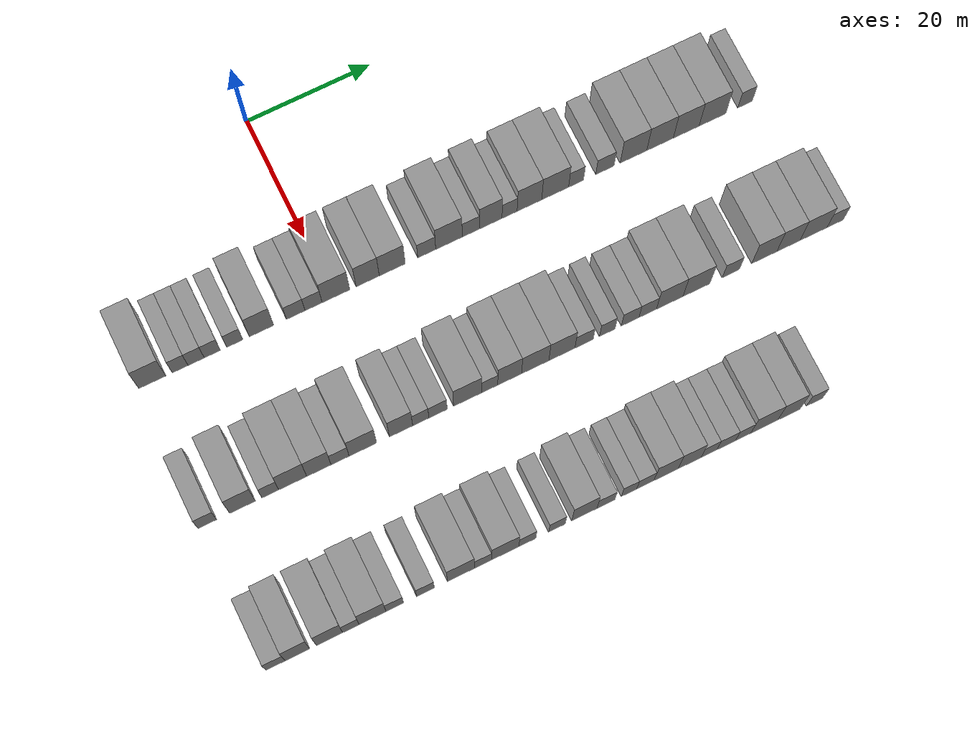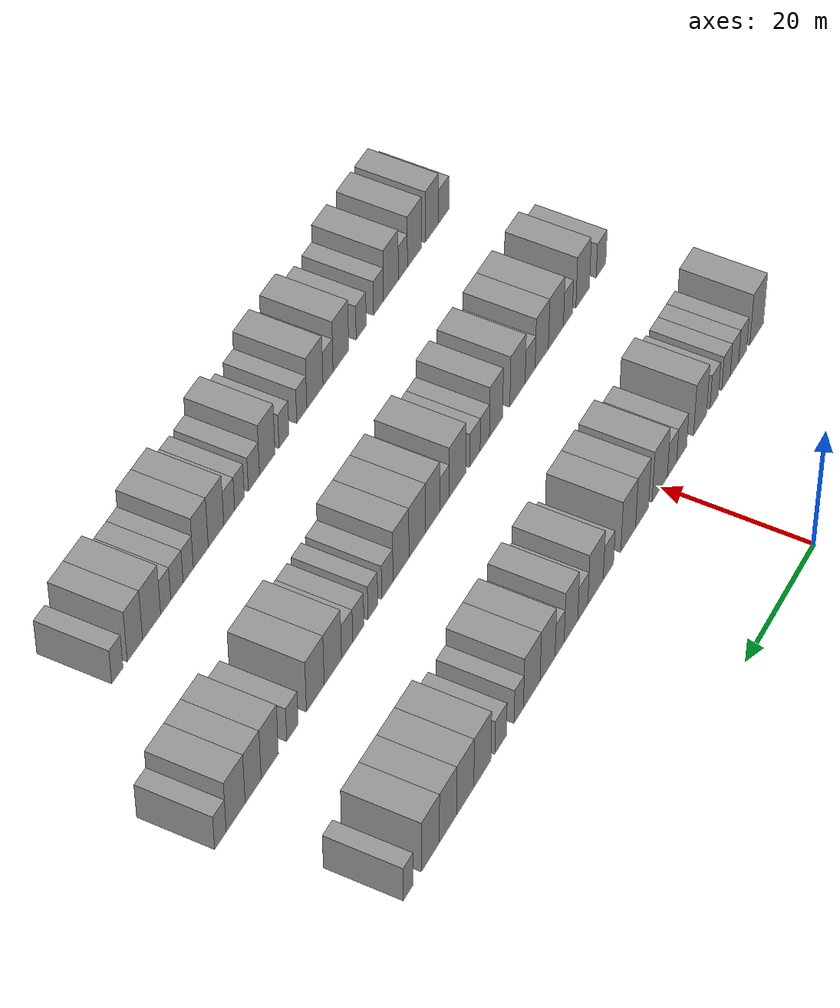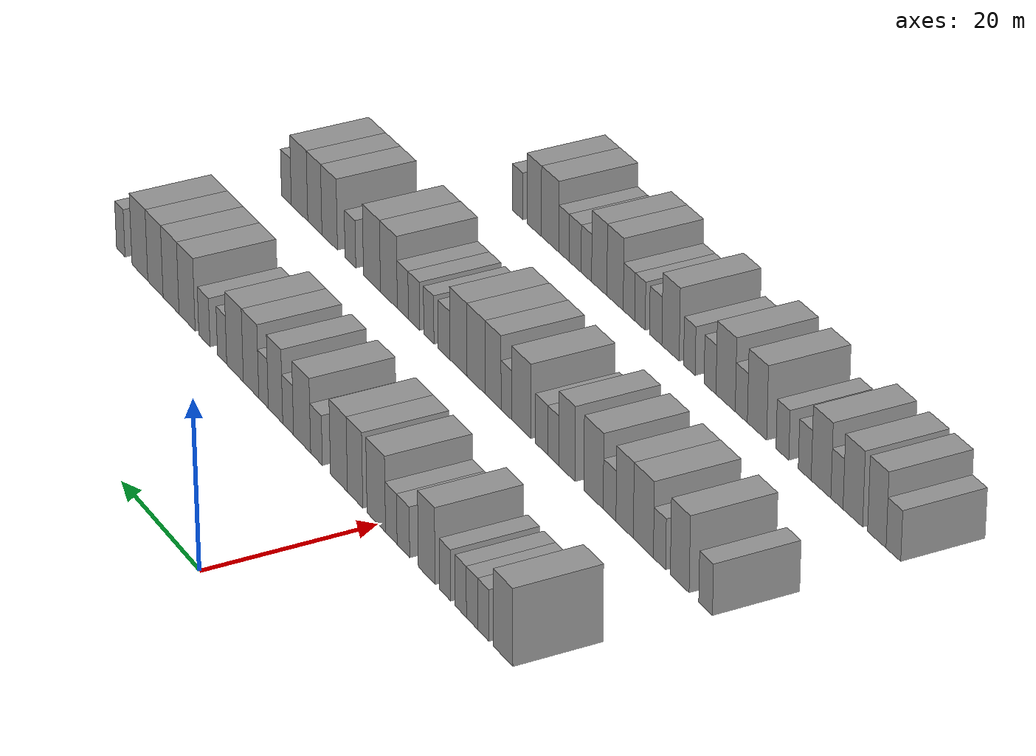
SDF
<sdf version="1.6">
 <world name="default">
  <model name="building_88">
   <static>1</static>
   <pose>25.0000 -28.3885 0 0.000000 0.000000 0.000000</pose>
   <link name="link">
    <pose>0 0 4.50 0 0 0</pose>
    <collision name="collision"><geometry><box><size>10.0000 4.1904 9.0000</size></box></geometry></collision>
    <visual name="visual">
     <cast_shadows>0</cast_shadows>
     <geometry><box><size>10.0000 4.1904 9.0000</size></box></geometry>
     <material>
      <script>
       <uri>model://grey_wall/materials/scripts</uri>
       <uri>model://grey_wall/materials/textures</uri>
       <name>vrc/grey_wall</name>
      </script>
     </material>
    </visual>
   </link>
  </model>
  <model name="building_89">
   <static>1</static>
   <pose>25.0000 -24.0654 0 0.000000 0.000000 0.000000</pose>
   <link name="link">
    <pose>0 0 3.00 0 0 0</pose>
    <collision name="collision"><geometry><box><size>10.0000 2.4556 6.0000</size></box></geometry></collision>
    <visual name="visual">
     <cast_shadows>0</cast_shadows>
     <geometry><box><size>10.0000 2.4556 6.0000</size></box></geometry>
     <material>
      <script>
       <uri>model://grey_wall/materials/scripts</uri>
       <uri>model://grey_wall/materials/textures</uri>
       <name>vrc/grey_wall</name>
      </script>
     </material>
    </visual>
   </link>
  </model>
  <model name="building_90">
   <static>1</static>
   <pose>25.0000 -21.5696 0 0.000000 0.000000 0.000000</pose>
   <link name="link">
    <pose>0 0 3.00 0 0 0</pose>
    <collision name="collision"><geometry><box><size>10.0000 2.5361 6.0000</size></box></geometry></collision>
    <visual name="visual">
     <cast_shadows>0</cast_shadows>
     <geometry><box><size>10.0000 2.5361 6.0000</size></box></geometry>
     <material>
      <script>
       <uri>model://grey_wall/materials/scripts</uri>
       <uri>model://grey_wall/materials/textures</uri>
       <name>vrc/grey_wall</name>
      </script>
     </material>
    </visual>
   </link>
  </model>
  <model name="building_91">
   <static>1</static>
   <pose>25.0000 -19.0458 0 0.000000 0.000000 0.000000</pose>
   <link name="link">
    <pose>0 0 3.00 0 0 0</pose>
    <collision name="collision"><geometry><box><size>10.0000 2.5114 6.0000</size></box></geometry></collision>
    <visual name="visual">
     <cast_shadows>0</cast_shadows>
     <geometry><box><size>10.0000 2.5114 6.0000</size></box></geometry>
     <material>
      <script>
       <uri>model://grey_wall/materials/scripts</uri>
       <uri>model://grey_wall/materials/textures</uri>
       <name>vrc/grey_wall</name>
      </script>
     </material>
    </visual>
   </link>
  </model>
  <model name="building_92">
   <static>1</static>
   <pose>25.0000 -15.5203 0 0.000000 0.000000 0.000000</pose>
   <link name="link">
    <pose>0 0 3.00 0 0 0</pose>
    <collision name="collision"><geometry><box><size>10.0000 2.5397 6.0000</size></box></geometry></collision>
    <visual name="visual">
     <cast_shadows>0</cast_shadows>
     <geometry><box><size>10.0000 2.5397 6.0000</size></box></geometry>
     <material>
      <script>
       <uri>model://grey_wall/materials/scripts</uri>
       <uri>model://grey_wall/materials/textures</uri>
       <name>vrc/grey_wall</name>
      </script>
     </material>
    </visual>
   </link>
  </model>
  <model name="building_93">
   <static>1</static>
   <pose>25.0000 -11.3293 0 0.000000 0.000000 0.000000</pose>
   <link name="link">
    <pose>0 0 4.50 0 0 0</pose>
    <collision name="collision"><geometry><box><size>10.0000 3.8422 9.0000</size></box></geometry></collision>
    <visual name="visual">
     <cast_shadows>0</cast_shadows>
     <geometry><box><size>10.0000 3.8422 9.0000</size></box></geometry>
     <material>
      <script>
       <uri>model://grey_wall/materials/scripts</uri>
       <uri>model://grey_wall/materials/textures</uri>
       <name>vrc/grey_wall</name>
      </script>
     </material>
    </visual>
   </link>
  </model>
  <model name="building_94">
   <static>1</static>
   <pose>25.0000 -5.9409 0 0.000000 0.000000 0.000000</pose>
   <link name="link">
    <pose>0 0 3.00 0 0 0</pose>
    <collision name="collision"><geometry><box><size>10.0000 2.9345 6.0000</size></box></geometry></collision>
    <visual name="visual">
     <cast_shadows>0</cast_shadows>
     <geometry><box><size>10.0000 2.9345 6.0000</size></box></geometry>
     <material>
      <script>
       <uri>model://grey_wall/materials/scripts</uri>
       <uri>model://grey_wall/materials/textures</uri>
       <name>vrc/grey_wall</name>
      </script>
     </material>
    </visual>
   </link>
  </model>
  <model name="building_95">
   <static>1</static>
   <pose>25.0000 -3.1197 0 0.000000 0.000000 0.000000</pose>
   <link name="link">
    <pose>0 0 3.00 0 0 0</pose>
    <collision name="collision"><geometry><box><size>10.0000 2.7080 6.0000</size></box></geometry></collision>
    <visual name="visual">
     <cast_shadows>0</cast_shadows>
     <geometry><box><size>10.0000 2.7080 6.0000</size></box></geometry>
     <material>
      <script>
       <uri>model://grey_wall/materials/scripts</uri>
       <uri>model://grey_wall/materials/textures</uri>
       <name>vrc/grey_wall</name>
      </script>
     </material>
    </visual>
   </link>
  </model>
  <model name="building_96">
   <static>1</static>
   <pose>25.0000 0.4315 0 0.000000 0.000000 0.000000</pose>
   <link name="link">
    <pose>0 0 4.50 0 0 0</pose>
    <collision name="collision"><geometry><box><size>10.0000 4.3944 9.0000</size></box></geometry></collision>
    <visual name="visual">
     <cast_shadows>0</cast_shadows>
     <geometry><box><size>10.0000 4.3944 9.0000</size></box></geometry>
     <material>
      <script>
       <uri>model://grey_wall/materials/scripts</uri>
       <uri>model://grey_wall/materials/textures</uri>
       <name>vrc/grey_wall</name>
      </script>
     </material>
    </visual>
   </link>
  </model>
  <model name="building_97">
   <static>1</static>
   <pose>25.0000 5.4753 0 0.000000 0.000000 0.000000</pose>
   <link name="link">
    <pose>0 0 4.50 0 0 0</pose>
    <collision name="collision"><geometry><box><size>10.0000 3.6933 9.0000</size></box></geometry></collision>
    <visual name="visual">
     <cast_shadows>0</cast_shadows>
     <geometry><box><size>10.0000 3.6933 9.0000</size></box></geometry>
     <material>
      <script>
       <uri>model://grey_wall/materials/scripts</uri>
       <uri>model://grey_wall/materials/textures</uri>
       <name>vrc/grey_wall</name>
      </script>
     </material>
    </visual>
   </link>
  </model>
  <model name="building_98">
   <static>1</static>
   <pose>25.0000 9.3908 0 0.000000 0.000000 0.000000</pose>
   <link name="link">
    <pose>0 0 4.50 0 0 0</pose>
    <collision name="collision"><geometry><box><size>10.0000 4.1376 9.0000</size></box></geometry></collision>
    <visual name="visual">
     <cast_shadows>0</cast_shadows>
     <geometry><box><size>10.0000 4.1376 9.0000</size></box></geometry>
     <material>
      <script>
       <uri>model://grey_wall/materials/scripts</uri>
       <uri>model://grey_wall/materials/textures</uri>
       <name>vrc/grey_wall</name>
      </script>
     </material>
    </visual>
   </link>
  </model>
  <model name="building_99">
   <static>1</static>
   <pose>25.0000 14.9051 0 0.000000 0.000000 0.000000</pose>
   <link name="link">
    <pose>0 0 3.00 0 0 0</pose>
    <collision name="collision"><geometry><box><size>10.0000 2.8911 6.0000</size></box></geometry></collision>
    <visual name="visual">
     <cast_shadows>0</cast_shadows>
     <geometry><box><size>10.0000 2.8911 6.0000</size></box></geometry>
     <material>
      <script>
       <uri>model://grey_wall/materials/scripts</uri>
       <uri>model://grey_wall/materials/textures</uri>
       <name>vrc/grey_wall</name>
      </script>
     </material>
    </visual>
   </link>
  </model>
  <model name="building_100">
   <static>1</static>
   <pose>25.0000 18.4840 0 0.000000 0.000000 0.000000</pose>
   <link name="link">
    <pose>0 0 4.50 0 0 0</pose>
    <collision name="collision"><geometry><box><size>10.0000 4.2667 9.0000</size></box></geometry></collision>
    <visual name="visual">
     <cast_shadows>0</cast_shadows>
     <geometry><box><size>10.0000 4.2667 9.0000</size></box></geometry>
     <material>
      <script>
       <uri>model://grey_wall/materials/scripts</uri>
       <uri>model://grey_wall/materials/textures</uri>
       <name>vrc/grey_wall</name>
      </script>
     </material>
    </visual>
   </link>
  </model>
  <model name="building_101">
   <static>1</static>
   <pose>25.0000 21.9863 0 0.000000 0.000000 0.000000</pose>
   <link name="link">
    <pose>0 0 3.00 0 0 0</pose>
    <collision name="collision"><geometry><box><size>10.0000 2.7380 6.0000</size></box></geometry></collision>
    <visual name="visual">
     <cast_shadows>0</cast_shadows>
     <geometry><box><size>10.0000 2.7380 6.0000</size></box></geometry>
     <material>
      <script>
       <uri>model://grey_wall/materials/scripts</uri>
       <uri>model://grey_wall/materials/textures</uri>
       <name>vrc/grey_wall</name>
      </script>
     </material>
    </visual>
   </link>
  </model>
  <model name="building_102">
   <static>1</static>
   <pose>25.0000 25.1922 0 0.000000 0.000000 0.000000</pose>
   <link name="link">
    <pose>0 0 4.50 0 0 0</pose>
    <collision name="collision"><geometry><box><size>10.0000 3.6737 9.0000</size></box></geometry></collision>
    <visual name="visual">
     <cast_shadows>0</cast_shadows>
     <geometry><box><size>10.0000 3.6737 9.0000</size></box></geometry>
     <material>
      <script>
       <uri>model://grey_wall/materials/scripts</uri>
       <uri>model://grey_wall/materials/textures</uri>
       <name>vrc/grey_wall</name>
      </script>
     </material>
    </visual>
   </link>
  </model>
  <model name="building_103">
   <static>1</static>
   <pose>25.0000 28.2496 0 0.000000 0.000000 0.000000</pose>
   <link name="link">
    <pose>0 0 3.00 0 0 0</pose>
    <collision name="collision"><geometry><box><size>10.0000 2.4411 6.0000</size></box></geometry></collision>
    <visual name="visual">
     <cast_shadows>0</cast_shadows>
     <geometry><box><size>10.0000 2.4411 6.0000</size></box></geometry>
     <material>
      <script>
       <uri>model://grey_wall/materials/scripts</uri>
       <uri>model://grey_wall/materials/textures</uri>
       <name>vrc/grey_wall</name>
      </script>
     </material>
    </visual>
   </link>
  </model>
  <model name="building_104">
   <static>1</static>
   <pose>25.0000 31.4704 0 0.000000 0.000000 0.000000</pose>
   <link name="link">
    <pose>0 0 4.50 0 0 0</pose>
    <collision name="collision"><geometry><box><size>10.0000 4.0004 9.0000</size></box></geometry></collision>
    <visual name="visual">
     <cast_shadows>0</cast_shadows>
     <geometry><box><size>10.0000 4.0004 9.0000</size></box></geometry>
     <material>
      <script>
       <uri>model://grey_wall/materials/scripts</uri>
       <uri>model://grey_wall/materials/textures</uri>
       <name>vrc/grey_wall</name>
      </script>
     </material>
    </visual>
   </link>
  </model>
  <model name="building_105">
   <static>1</static>
   <pose>25.0000 35.6618 0 0.000000 0.000000 0.000000</pose>
   <link name="link">
    <pose>0 0 4.50 0 0 0</pose>
    <collision name="collision"><geometry><box><size>10.0000 4.3824 9.0000</size></box></geometry></collision>
    <visual name="visual">
     <cast_shadows>0</cast_shadows>
     <geometry><box><size>10.0000 4.3824 9.0000</size></box></geometry>
     <material>
      <script>
       <uri>model://grey_wall/materials/scripts</uri>
       <uri>model://grey_wall/materials/textures</uri>
       <name>vrc/grey_wall</name>
      </script>
     </material>
    </visual>
   </link>
  </model>
  <model name="building_106">
   <static>1</static>
   <pose>25.0000 39.0703 0 0.000000 0.000000 0.000000</pose>
   <link name="link">
    <pose>0 0 3.00 0 0 0</pose>
    <collision name="collision"><geometry><box><size>10.0000 2.4347 6.0000</size></box></geometry></collision>
    <visual name="visual">
     <cast_shadows>0</cast_shadows>
     <geometry><box><size>10.0000 2.4347 6.0000</size></box></geometry>
     <material>
      <script>
       <uri>model://grey_wall/materials/scripts</uri>
       <uri>model://grey_wall/materials/textures</uri>
       <name>vrc/grey_wall</name>
      </script>
     </material>
    </visual>
   </link>
  </model>
  <model name="building_107">
   <static>1</static>
   <pose>25.0000 43.7862 0 0.000000 0.000000 0.000000</pose>
   <link name="link">
    <pose>0 0 3.00 0 0 0</pose>
    <collision name="collision"><geometry><box><size>10.0000 2.9971 6.0000</size></box></geometry></collision>
    <visual name="visual">
     <cast_shadows>0</cast_shadows>
     <geometry><box><size>10.0000 2.9971 6.0000</size></box></geometry>
     <material>
      <script>
       <uri>model://grey_wall/materials/scripts</uri>
       <uri>model://grey_wall/materials/textures</uri>
       <name>vrc/grey_wall</name>
      </script>
     </material>
    </visual>
   </link>
  </model>
  <model name="building_108">
   <static>1</static>
   <pose>25.0000 48.4741 0 0.000000 0.000000 0.000000</pose>
   <link name="link">
    <pose>0 0 4.50 0 0 0</pose>
    <collision name="collision"><geometry><box><size>10.0000 4.3787 9.0000</size></box></geometry></collision>
    <visual name="visual">
     <cast_shadows>0</cast_shadows>
     <geometry><box><size>10.0000 4.3787 9.0000</size></box></geometry>
     <material>
      <script>
       <uri>model://grey_wall/materials/scripts</uri>
       <uri>model://grey_wall/materials/textures</uri>
       <name>vrc/grey_wall</name>
      </script>
     </material>
    </visual>
   </link>
  </model>
  <model name="building_109">
   <static>1</static>
   <pose>25.0000 52.8541 0 0.000000 0.000000 0.000000</pose>
   <link name="link">
    <pose>0 0 4.50 0 0 0</pose>
    <collision name="collision"><geometry><box><size>10.0000 4.3813 9.0000</size></box></geometry></collision>
    <visual name="visual">
     <cast_shadows>0</cast_shadows>
     <geometry><box><size>10.0000 4.3813 9.0000</size></box></geometry>
     <material>
      <script>
       <uri>model://grey_wall/materials/scripts</uri>
       <uri>model://grey_wall/materials/textures</uri>
       <name>vrc/grey_wall</name>
      </script>
     </material>
    </visual>
   </link>
  </model>
  <model name="building_110">
   <static>1</static>
   <pose>25.0000 57.1756 0 0.000000 0.000000 0.000000</pose>
   <link name="link">
    <pose>0 0 4.50 0 0 0</pose>
    <collision name="collision"><geometry><box><size>10.0000 4.2616 9.0000</size></box></geometry></collision>
    <visual name="visual">
     <cast_shadows>0</cast_shadows>
     <geometry><box><size>10.0000 4.2616 9.0000</size></box></geometry>
     <material>
      <script>
       <uri>model://grey_wall/materials/scripts</uri>
       <uri>model://grey_wall/materials/textures</uri>
       <name>vrc/grey_wall</name>
      </script>
     </material>
    </visual>
   </link>
  </model>
  <model name="building_111">
   <static>1</static>
   <pose>25.0000 61.5272 0 0.000000 0.000000 0.000000</pose>
   <link name="link">
    <pose>0 0 4.50 0 0 0</pose>
    <collision name="collision"><geometry><box><size>10.0000 4.4417 9.0000</size></box></geometry></collision>
    <visual name="visual">
     <cast_shadows>0</cast_shadows>
     <geometry><box><size>10.0000 4.4417 9.0000</size></box></geometry>
     <material>
      <script>
       <uri>model://grey_wall/materials/scripts</uri>
       <uri>model://grey_wall/materials/textures</uri>
       <name>vrc/grey_wall</name>
      </script>
     </material>
    </visual>
   </link>
  </model>
  <model name="building_112">
   <static>1</static>
   <pose>25.0000 66.9552 0 0.000000 0.000000 0.000000</pose>
   <link name="link">
    <pose>0 0 3.00 0 0 0</pose>
    <collision name="collision"><geometry><box><size>10.0000 2.4143 6.0000</size></box></geometry></collision>
    <visual name="visual">
     <cast_shadows>0</cast_shadows>
     <geometry><box><size>10.0000 2.4143 6.0000</size></box></geometry>
     <material>
      <script>
       <uri>model://grey_wall/materials/scripts</uri>
       <uri>model://grey_wall/materials/textures</uri>
       <name>vrc/grey_wall</name>
      </script>
     </material>
    </visual>
   </link>
  </model>
  <model name="building_275">
   <static>1</static>
   <pose>47.0000 -29.7096 0 0.000000 0.000000 0.000000</pose>
   <link name="link">
    <pose>0 0 3.00 0 0 0</pose>
    <collision name="collision"><geometry><box><size>10.0000 2.8460 6.0000</size></box></geometry></collision>
    <visual name="visual">
     <cast_shadows>0</cast_shadows>
     <geometry><box><size>10.0000 2.8460 6.0000</size></box></geometry>
     <material>
      <script>
       <uri>model://grey_wall/materials/scripts</uri>
       <uri>model://grey_wall/materials/textures</uri>
       <name>vrc/grey_wall</name>
      </script>
     </material>
    </visual>
   </link>
  </model>
  <model name="building_276">
   <static>1</static>
   <pose>47.0000 -24.3093 0 0.000000 0.000000 0.000000</pose>
   <link name="link">
    <pose>0 0 4.50 0 0 0</pose>
    <collision name="collision"><geometry><box><size>10.0000 3.9545 9.0000</size></box></geometry></collision>
    <visual name="visual">
     <cast_shadows>0</cast_shadows>
     <geometry><box><size>10.0000 3.9545 9.0000</size></box></geometry>
     <material>
      <script>
       <uri>model://grey_wall/materials/scripts</uri>
       <uri>model://grey_wall/materials/textures</uri>
       <name>vrc/grey_wall</name>
      </script>
     </material>
    </visual>
   </link>
  </model>
  <model name="building_277">
   <static>1</static>
   <pose>47.0000 -20.0316 0 0.000000 0.000000 0.000000</pose>
   <link name="link">
    <pose>0 0 3.00 0 0 0</pose>
    <collision name="collision"><geometry><box><size>10.0000 2.6008 6.0000</size></box></geometry></collision>
    <visual name="visual">
     <cast_shadows>0</cast_shadows>
     <geometry><box><size>10.0000 2.6008 6.0000</size></box></geometry>
     <material>
      <script>
       <uri>model://grey_wall/materials/scripts</uri>
       <uri>model://grey_wall/materials/textures</uri>
       <name>vrc/grey_wall</name>
      </script>
     </material>
    </visual>
   </link>
  </model>
  <model name="building_278">
   <static>1</static>
   <pose>47.0000 -16.5733 0 0.000000 0.000000 0.000000</pose>
   <link name="link">
    <pose>0 0 4.50 0 0 0</pose>
    <collision name="collision"><geometry><box><size>10.0000 4.3157 9.0000</size></box></geometry></collision>
    <visual name="visual">
     <cast_shadows>0</cast_shadows>
     <geometry><box><size>10.0000 4.3157 9.0000</size></box></geometry>
     <material>
      <script>
       <uri>model://grey_wall/materials/scripts</uri>
       <uri>model://grey_wall/materials/textures</uri>
       <name>vrc/grey_wall</name>
      </script>
     </material>
    </visual>
   </link>
  </model>
  <model name="building_279">
   <static>1</static>
   <pose>47.0000 -12.5269 0 0.000000 0.000000 0.000000</pose>
   <link name="link">
    <pose>0 0 4.50 0 0 0</pose>
    <collision name="collision"><geometry><box><size>10.0000 3.7772 9.0000</size></box></geometry></collision>
    <visual name="visual">
     <cast_shadows>0</cast_shadows>
     <geometry><box><size>10.0000 3.7772 9.0000</size></box></geometry>
     <material>
      <script>
       <uri>model://grey_wall/materials/scripts</uri>
       <uri>model://grey_wall/materials/textures</uri>
       <name>vrc/grey_wall</name>
      </script>
     </material>
    </visual>
   </link>
  </model>
  <model name="building_280">
   <static>1</static>
   <pose>47.0000 -9.2367 0 0.000000 0.000000 0.000000</pose>
   <link name="link">
    <pose>0 0 3.00 0 0 0</pose>
    <collision name="collision"><geometry><box><size>10.0000 2.8031 6.0000</size></box></geometry></collision>
    <visual name="visual">
     <cast_shadows>0</cast_shadows>
     <geometry><box><size>10.0000 2.8031 6.0000</size></box></geometry>
     <material>
      <script>
       <uri>model://grey_wall/materials/scripts</uri>
       <uri>model://grey_wall/materials/textures</uri>
       <name>vrc/grey_wall</name>
      </script>
     </material>
    </visual>
   </link>
  </model>
  <model name="building_281">
   <static>1</static>
   <pose>47.0000 -5.6960 0 0.000000 0.000000 0.000000</pose>
   <link name="link">
    <pose>0 0 4.50 0 0 0</pose>
    <collision name="collision"><geometry><box><size>10.0000 4.2783 9.0000</size></box></geometry></collision>
    <visual name="visual">
     <cast_shadows>0</cast_shadows>
     <geometry><box><size>10.0000 4.2783 9.0000</size></box></geometry>
     <material>
      <script>
       <uri>model://grey_wall/materials/scripts</uri>
       <uri>model://grey_wall/materials/textures</uri>
       <name>vrc/grey_wall</name>
      </script>
     </material>
    </visual>
   </link>
  </model>
  <model name="building_282">
   <static>1</static>
   <pose>47.0000 0.2681 0 0.000000 0.000000 0.000000</pose>
   <link name="link">
    <pose>0 0 4.50 0 0 0</pose>
    <collision name="collision"><geometry><box><size>10.0000 3.6499 9.0000</size></box></geometry></collision>
    <visual name="visual">
     <cast_shadows>0</cast_shadows>
     <geometry><box><size>10.0000 3.6499 9.0000</size></box></geometry>
     <material>
      <script>
       <uri>model://grey_wall/materials/scripts</uri>
       <uri>model://grey_wall/materials/textures</uri>
       <name>vrc/grey_wall</name>
      </script>
     </material>
    </visual>
   </link>
  </model>
  <model name="building_283">
   <static>1</static>
   <pose>47.0000 3.3596 0 0.000000 0.000000 0.000000</pose>
   <link name="link">
    <pose>0 0 3.00 0 0 0</pose>
    <collision name="collision"><geometry><box><size>10.0000 2.5332 6.0000</size></box></geometry></collision>
    <visual name="visual">
     <cast_shadows>0</cast_shadows>
     <geometry><box><size>10.0000 2.5332 6.0000</size></box></geometry>
     <material>
      <script>
       <uri>model://grey_wall/materials/scripts</uri>
       <uri>model://grey_wall/materials/textures</uri>
       <name>vrc/grey_wall</name>
      </script>
     </material>
    </visual>
   </link>
  </model>
  <model name="building_284">
   <static>1</static>
   <pose>47.0000 6.0678 0 0.000000 0.000000 0.000000</pose>
   <link name="link">
    <pose>0 0 3.00 0 0 0</pose>
    <collision name="collision"><geometry><box><size>10.0000 2.8831 6.0000</size></box></geometry></collision>
    <visual name="visual">
     <cast_shadows>0</cast_shadows>
     <geometry><box><size>10.0000 2.8831 6.0000</size></box></geometry>
     <material>
      <script>
       <uri>model://grey_wall/materials/scripts</uri>
       <uri>model://grey_wall/materials/textures</uri>
       <name>vrc/grey_wall</name>
      </script>
     </material>
    </visual>
   </link>
  </model>
  <model name="building_285">
   <static>1</static>
   <pose>47.0000 10.7539 0 0.000000 0.000000 0.000000</pose>
   <link name="link">
    <pose>0 0 4.50 0 0 0</pose>
    <collision name="collision"><geometry><box><size>10.0000 4.4890 9.0000</size></box></geometry></collision>
    <visual name="visual">
     <cast_shadows>0</cast_shadows>
     <geometry><box><size>10.0000 4.4890 9.0000</size></box></geometry>
     <material>
      <script>
       <uri>model://grey_wall/materials/scripts</uri>
       <uri>model://grey_wall/materials/textures</uri>
       <name>vrc/grey_wall</name>
      </script>
     </material>
    </visual>
   </link>
  </model>
  <model name="building_286">
   <static>1</static>
   <pose>47.0000 14.2380 0 0.000000 0.000000 0.000000</pose>
   <link name="link">
    <pose>0 0 3.00 0 0 0</pose>
    <collision name="collision"><geometry><box><size>10.0000 2.4792 6.0000</size></box></geometry></collision>
    <visual name="visual">
     <cast_shadows>0</cast_shadows>
     <geometry><box><size>10.0000 2.4792 6.0000</size></box></geometry>
     <material>
      <script>
       <uri>model://grey_wall/materials/scripts</uri>
       <uri>model://grey_wall/materials/textures</uri>
       <name>vrc/grey_wall</name>
      </script>
     </material>
    </visual>
   </link>
  </model>
  <model name="building_287">
   <static>1</static>
   <pose>47.0000 17.3684 0 0.000000 0.000000 0.000000</pose>
   <link name="link">
    <pose>0 0 4.50 0 0 0</pose>
    <collision name="collision"><geometry><box><size>10.0000 3.7816 9.0000</size></box></geometry></collision>
    <visual name="visual">
     <cast_shadows>0</cast_shadows>
     <geometry><box><size>10.0000 3.7816 9.0000</size></box></geometry>
     <material>
      <script>
       <uri>model://grey_wall/materials/scripts</uri>
       <uri>model://grey_wall/materials/textures</uri>
       <name>vrc/grey_wall</name>
      </script>
     </material>
    </visual>
   </link>
  </model>
  <model name="building_288">
   <static>1</static>
   <pose>47.0000 21.4338 0 0.000000 0.000000 0.000000</pose>
   <link name="link">
    <pose>0 0 4.50 0 0 0</pose>
    <collision name="collision"><geometry><box><size>10.0000 4.3492 9.0000</size></box></geometry></collision>
    <visual name="visual">
     <cast_shadows>0</cast_shadows>
     <geometry><box><size>10.0000 4.3492 9.0000</size></box></geometry>
     <material>
      <script>
       <uri>model://grey_wall/materials/scripts</uri>
       <uri>model://grey_wall/materials/textures</uri>
       <name>vrc/grey_wall</name>
      </script>
     </material>
    </visual>
   </link>
  </model>
  <model name="building_289">
   <static>1</static>
   <pose>47.0000 25.6853 0 0.000000 0.000000 0.000000</pose>
   <link name="link">
    <pose>0 0 4.50 0 0 0</pose>
    <collision name="collision"><geometry><box><size>10.0000 4.1538 9.0000</size></box></geometry></collision>
    <visual name="visual">
     <cast_shadows>0</cast_shadows>
     <geometry><box><size>10.0000 4.1538 9.0000</size></box></geometry>
     <material>
      <script>
       <uri>model://grey_wall/materials/scripts</uri>
       <uri>model://grey_wall/materials/textures</uri>
       <name>vrc/grey_wall</name>
      </script>
     </material>
    </visual>
   </link>
  </model>
  <model name="building_290">
   <static>1</static>
   <pose>47.0000 29.2273 0 0.000000 0.000000 0.000000</pose>
   <link name="link">
    <pose>0 0 3.00 0 0 0</pose>
    <collision name="collision"><geometry><box><size>10.0000 2.9302 6.0000</size></box></geometry></collision>
    <visual name="visual">
     <cast_shadows>0</cast_shadows>
     <geometry><box><size>10.0000 2.9302 6.0000</size></box></geometry>
     <material>
      <script>
       <uri>model://grey_wall/materials/scripts</uri>
       <uri>model://grey_wall/materials/textures</uri>
       <name>vrc/grey_wall</name>
      </script>
     </material>
    </visual>
   </link>
  </model>
  <model name="building_291">
   <static>1</static>
   <pose>47.0000 32.9473 0 0.000000 0.000000 0.000000</pose>
   <link name="link">
    <pose>0 0 3.00 0 0 0</pose>
    <collision name="collision"><geometry><box><size>10.0000 2.5098 6.0000</size></box></geometry></collision>
    <visual name="visual">
     <cast_shadows>0</cast_shadows>
     <geometry><box><size>10.0000 2.5098 6.0000</size></box></geometry>
     <material>
      <script>
       <uri>model://grey_wall/materials/scripts</uri>
       <uri>model://grey_wall/materials/textures</uri>
       <name>vrc/grey_wall</name>
      </script>
     </material>
    </visual>
   </link>
  </model>
  <model name="building_292">
   <static>1</static>
   <pose>47.0000 36.6264 0 0.000000 0.000000 0.000000</pose>
   <link name="link">
    <pose>0 0 3.00 0 0 0</pose>
    <collision name="collision"><geometry><box><size>10.0000 2.8484 6.0000</size></box></geometry></collision>
    <visual name="visual">
     <cast_shadows>0</cast_shadows>
     <geometry><box><size>10.0000 2.8484 6.0000</size></box></geometry>
     <material>
      <script>
       <uri>model://grey_wall/materials/scripts</uri>
       <uri>model://grey_wall/materials/textures</uri>
       <name>vrc/grey_wall</name>
      </script>
     </material>
    </visual>
   </link>
  </model>
  <model name="building_293">
   <static>1</static>
   <pose>47.0000 39.4523 0 0.000000 0.000000 0.000000</pose>
   <link name="link">
    <pose>0 0 3.00 0 0 0</pose>
    <collision name="collision"><geometry><box><size>10.0000 2.8034 6.0000</size></box></geometry></collision>
    <visual name="visual">
     <cast_shadows>0</cast_shadows>
     <geometry><box><size>10.0000 2.8034 6.0000</size></box></geometry>
     <material>
      <script>
       <uri>model://grey_wall/materials/scripts</uri>
       <uri>model://grey_wall/materials/textures</uri>
       <name>vrc/grey_wall</name>
      </script>
     </material>
    </visual>
   </link>
  </model>
  <model name="building_294">
   <static>1</static>
   <pose>47.0000 43.0053 0 0.000000 0.000000 0.000000</pose>
   <link name="link">
    <pose>0 0 4.50 0 0 0</pose>
    <collision name="collision"><geometry><box><size>10.0000 4.3025 9.0000</size></box></geometry></collision>
    <visual name="visual">
     <cast_shadows>0</cast_shadows>
     <geometry><box><size>10.0000 4.3025 9.0000</size></box></geometry>
     <material>
      <script>
       <uri>model://grey_wall/materials/scripts</uri>
       <uri>model://grey_wall/materials/textures</uri>
       <name>vrc/grey_wall</name>
      </script>
     </material>
    </visual>
   </link>
  </model>
  <model name="building_295">
   <static>1</static>
   <pose>47.0000 47.3461 0 0.000000 0.000000 0.000000</pose>
   <link name="link">
    <pose>0 0 4.50 0 0 0</pose>
    <collision name="collision"><geometry><box><size>10.0000 4.3790 9.0000</size></box></geometry></collision>
    <visual name="visual">
     <cast_shadows>0</cast_shadows>
     <geometry><box><size>10.0000 4.3790 9.0000</size></box></geometry>
     <material>
      <script>
       <uri>model://grey_wall/materials/scripts</uri>
       <uri>model://grey_wall/materials/textures</uri>
       <name>vrc/grey_wall</name>
      </script>
     </material>
    </visual>
   </link>
  </model>
  <model name="building_296">
   <static>1</static>
   <pose>47.0000 52.9402 0 0.000000 0.000000 0.000000</pose>
   <link name="link">
    <pose>0 0 3.00 0 0 0</pose>
    <collision name="collision"><geometry><box><size>10.0000 2.8092 6.0000</size></box></geometry></collision>
    <visual name="visual">
     <cast_shadows>0</cast_shadows>
     <geometry><box><size>10.0000 2.8092 6.0000</size></box></geometry>
     <material>
      <script>
       <uri>model://grey_wall/materials/scripts</uri>
       <uri>model://grey_wall/materials/textures</uri>
       <name>vrc/grey_wall</name>
      </script>
     </material>
    </visual>
   </link>
  </model>
  <model name="building_297">
   <static>1</static>
   <pose>47.0000 58.4036 0 0.000000 0.000000 0.000000</pose>
   <link name="link">
    <pose>0 0 4.50 0 0 0</pose>
    <collision name="collision"><geometry><box><size>10.0000 4.1176 9.0000</size></box></geometry></collision>
    <visual name="visual">
     <cast_shadows>0</cast_shadows>
     <geometry><box><size>10.0000 4.1176 9.0000</size></box></geometry>
     <material>
      <script>
       <uri>model://grey_wall/materials/scripts</uri>
       <uri>model://grey_wall/materials/textures</uri>
       <name>vrc/grey_wall</name>
      </script>
     </material>
    </visual>
   </link>
  </model>
  <model name="building_298">
   <static>1</static>
   <pose>47.0000 62.3664 0 0.000000 0.000000 0.000000</pose>
   <link name="link">
    <pose>0 0 4.50 0 0 0</pose>
    <collision name="collision"><geometry><box><size>10.0000 3.8080 9.0000</size></box></geometry></collision>
    <visual name="visual">
     <cast_shadows>0</cast_shadows>
     <geometry><box><size>10.0000 3.8080 9.0000</size></box></geometry>
     <material>
      <script>
       <uri>model://grey_wall/materials/scripts</uri>
       <uri>model://grey_wall/materials/textures</uri>
       <name>vrc/grey_wall</name>
      </script>
     </material>
    </visual>
   </link>
  </model>
  <model name="building_299">
   <static>1</static>
   <pose>47.0000 66.4973 0 0.000000 0.000000 0.000000</pose>
   <link name="link">
    <pose>0 0 4.50 0 0 0</pose>
    <collision name="collision"><geometry><box><size>10.0000 4.4540 9.0000</size></box></geometry></collision>
    <visual name="visual">
     <cast_shadows>0</cast_shadows>
     <geometry><box><size>10.0000 4.4540 9.0000</size></box></geometry>
     <material>
      <script>
       <uri>model://grey_wall/materials/scripts</uri>
       <uri>model://grey_wall/materials/textures</uri>
       <name>vrc/grey_wall</name>
      </script>
     </material>
    </visual>
   </link>
  </model>
  <model name="building_300">
   <static>1</static>
   <pose>47.0000 70.0728 0 0.000000 0.000000 0.000000</pose>
   <link name="link">
    <pose>0 0 3.00 0 0 0</pose>
    <collision name="collision"><geometry><box><size>10.0000 2.6970 6.0000</size></box></geometry></collision>
    <visual name="visual">
     <cast_shadows>0</cast_shadows>
     <geometry><box><size>10.0000 2.6970 6.0000</size></box></geometry>
     <material>
      <script>
       <uri>model://grey_wall/materials/scripts</uri>
       <uri>model://grey_wall/materials/textures</uri>
       <name>vrc/grey_wall</name>
      </script>
     </material>
    </visual>
   </link>
  </model>
  <model name="building_467">
   <static>1</static>
   <pose>69.0000 -29.3229 0 0.000000 0.000000 0.000000</pose>
   <link name="link">
    <pose>0 0 3.00 0 0 0</pose>
    <collision name="collision"><geometry><box><size>10.0000 2.9201 6.0000</size></box></geometry></collision>
    <visual name="visual">
     <cast_shadows>0</cast_shadows>
     <geometry><box><size>10.0000 2.9201 6.0000</size></box></geometry>
     <material>
      <script>
       <uri>model://grey_wall/materials/scripts</uri>
       <uri>model://grey_wall/materials/textures</uri>
       <name>vrc/grey_wall</name>
      </script>
     </material>
    </visual>
   </link>
  </model>
  <model name="building_468">
   <static>1</static>
   <pose>69.0000 -26.0053 0 0.000000 0.000000 0.000000</pose>
   <link name="link">
    <pose>0 0 4.50 0 0 0</pose>
    <collision name="collision"><geometry><box><size>10.0000 3.7152 9.0000</size></box></geometry></collision>
    <visual name="visual">
     <cast_shadows>0</cast_shadows>
     <geometry><box><size>10.0000 3.7152 9.0000</size></box></geometry>
     <material>
      <script>
       <uri>model://grey_wall/materials/scripts</uri>
       <uri>model://grey_wall/materials/textures</uri>
       <name>vrc/grey_wall</name>
      </script>
     </material>
    </visual>
   </link>
  </model>
  <model name="building_469">
   <static>1</static>
   <pose>69.0000 -21.1502 0 0.000000 0.000000 0.000000</pose>
   <link name="link">
    <pose>0 0 4.50 0 0 0</pose>
    <collision name="collision"><geometry><box><size>10.0000 3.9950 9.0000</size></box></geometry></collision>
    <visual name="visual">
     <cast_shadows>0</cast_shadows>
     <geometry><box><size>10.0000 3.9950 9.0000</size></box></geometry>
     <material>
      <script>
       <uri>model://grey_wall/materials/scripts</uri>
       <uri>model://grey_wall/materials/textures</uri>
       <name>vrc/grey_wall</name>
      </script>
     </material>
    </visual>
   </link>
  </model>
  <model name="building_470">
   <static>1</static>
   <pose>69.0000 -17.8982 0 0.000000 0.000000 0.000000</pose>
   <link name="link">
    <pose>0 0 3.00 0 0 0</pose>
    <collision name="collision"><geometry><box><size>10.0000 2.5090 6.0000</size></box></geometry></collision>
    <visual name="visual">
     <cast_shadows>0</cast_shadows>
     <geometry><box><size>10.0000 2.5090 6.0000</size></box></geometry>
     <material>
      <script>
       <uri>model://grey_wall/materials/scripts</uri>
       <uri>model://grey_wall/materials/textures</uri>
       <name>vrc/grey_wall</name>
      </script>
     </material>
    </visual>
   </link>
  </model>
  <model name="building_471">
   <static>1</static>
   <pose>69.0000 -14.6063 0 0.000000 0.000000 0.000000</pose>
   <link name="link">
    <pose>0 0 4.50 0 0 0</pose>
    <collision name="collision"><geometry><box><size>10.0000 4.0749 9.0000</size></box></geometry></collision>
    <visual name="visual">
     <cast_shadows>0</cast_shadows>
     <geometry><box><size>10.0000 4.0749 9.0000</size></box></geometry>
     <material>
      <script>
       <uri>model://grey_wall/materials/scripts</uri>
       <uri>model://grey_wall/materials/textures</uri>
       <name>vrc/grey_wall</name>
      </script>
     </material>
    </visual>
   </link>
  </model>
  <model name="building_472">
   <static>1</static>
   <pose>69.0000 -11.2140 0 0.000000 0.000000 0.000000</pose>
   <link name="link">
    <pose>0 0 3.00 0 0 0</pose>
    <collision name="collision"><geometry><box><size>10.0000 2.7097 6.0000</size></box></geometry></collision>
    <visual name="visual">
     <cast_shadows>0</cast_shadows>
     <geometry><box><size>10.0000 2.7097 6.0000</size></box></geometry>
     <material>
      <script>
       <uri>model://grey_wall/materials/scripts</uri>
       <uri>model://grey_wall/materials/textures</uri>
       <name>vrc/grey_wall</name>
      </script>
     </material>
    </visual>
   </link>
  </model>
  <model name="building_473">
   <static>1</static>
   <pose>69.0000 -6.4988 0 0.000000 0.000000 0.000000</pose>
   <link name="link">
    <pose>0 0 3.00 0 0 0</pose>
    <collision name="collision"><geometry><box><size>10.0000 2.7207 6.0000</size></box></geometry></collision>
    <visual name="visual">
     <cast_shadows>0</cast_shadows>
     <geometry><box><size>10.0000 2.7207 6.0000</size></box></geometry>
     <material>
      <script>
       <uri>model://grey_wall/materials/scripts</uri>
       <uri>model://grey_wall/materials/textures</uri>
       <name>vrc/grey_wall</name>
      </script>
     </material>
    </visual>
   </link>
  </model>
  <model name="building_474">
   <static>1</static>
   <pose>69.0000 -1.0537 0 0.000000 0.000000 0.000000</pose>
   <link name="link">
    <pose>0 0 4.50 0 0 0</pose>
    <collision name="collision"><geometry><box><size>10.0000 4.1696 9.0000</size></box></geometry></collision>
    <visual name="visual">
     <cast_shadows>0</cast_shadows>
     <geometry><box><size>10.0000 4.1696 9.0000</size></box></geometry>
     <material>
      <script>
       <uri>model://grey_wall/materials/scripts</uri>
       <uri>model://grey_wall/materials/textures</uri>
       <name>vrc/grey_wall</name>
      </script>
     </material>
    </visual>
   </link>
  </model>
  <model name="building_475">
   <static>1</static>
   <pose>69.0000 2.3524 0 0.000000 0.000000 0.000000</pose>
   <link name="link">
    <pose>0 0 3.00 0 0 0</pose>
    <collision name="collision"><geometry><box><size>10.0000 2.6427 6.0000</size></box></geometry></collision>
    <visual name="visual">
     <cast_shadows>0</cast_shadows>
     <geometry><box><size>10.0000 2.6427 6.0000</size></box></geometry>
     <material>
      <script>
       <uri>model://grey_wall/materials/scripts</uri>
       <uri>model://grey_wall/materials/textures</uri>
       <name>vrc/grey_wall</name>
      </script>
     </material>
    </visual>
   </link>
  </model>
  <model name="building_476">
   <static>1</static>
   <pose>69.0000 5.7955 0 0.000000 0.000000 0.000000</pose>
   <link name="link">
    <pose>0 0 4.50 0 0 0</pose>
    <collision name="collision"><geometry><box><size>10.0000 4.2434 9.0000</size></box></geometry></collision>
    <visual name="visual">
     <cast_shadows>0</cast_shadows>
     <geometry><box><size>10.0000 4.2434 9.0000</size></box></geometry>
     <material>
      <script>
       <uri>model://grey_wall/materials/scripts</uri>
       <uri>model://grey_wall/materials/textures</uri>
       <name>vrc/grey_wall</name>
      </script>
     </material>
    </visual>
   </link>
  </model>
  <model name="building_477">
   <static>1</static>
   <pose>69.0000 9.2351 0 0.000000 0.000000 0.000000</pose>
   <link name="link">
    <pose>0 0 3.00 0 0 0</pose>
    <collision name="collision"><geometry><box><size>10.0000 2.6357 6.0000</size></box></geometry></collision>
    <visual name="visual">
     <cast_shadows>0</cast_shadows>
     <geometry><box><size>10.0000 2.6357 6.0000</size></box></geometry>
     <material>
      <script>
       <uri>model://grey_wall/materials/scripts</uri>
       <uri>model://grey_wall/materials/textures</uri>
       <name>vrc/grey_wall</name>
      </script>
     </material>
    </visual>
   </link>
  </model>
  <model name="building_478">
   <static>1</static>
   <pose>69.0000 13.8510 0 0.000000 0.000000 0.000000</pose>
   <link name="link">
    <pose>0 0 3.00 0 0 0</pose>
    <collision name="collision"><geometry><box><size>10.0000 2.5962 6.0000</size></box></geometry></collision>
    <visual name="visual">
     <cast_shadows>0</cast_shadows>
     <geometry><box><size>10.0000 2.5962 6.0000</size></box></geometry>
     <material>
      <script>
       <uri>model://grey_wall/materials/scripts</uri>
       <uri>model://grey_wall/materials/textures</uri>
       <name>vrc/grey_wall</name>
      </script>
     </material>
    </visual>
   </link>
  </model>
  <model name="building_479">
   <static>1</static>
   <pose>69.0000 18.1203 0 0.000000 0.000000 0.000000</pose>
   <link name="link">
    <pose>0 0 4.50 0 0 0</pose>
    <collision name="collision"><geometry><box><size>10.0000 3.9423 9.0000</size></box></geometry></collision>
    <visual name="visual">
     <cast_shadows>0</cast_shadows>
     <geometry><box><size>10.0000 3.9423 9.0000</size></box></geometry>
     <material>
      <script>
       <uri>model://grey_wall/materials/scripts</uri>
       <uri>model://grey_wall/materials/textures</uri>
       <name>vrc/grey_wall</name>
      </script>
     </material>
    </visual>
   </link>
  </model>
  <model name="building_480">
   <static>1</static>
   <pose>69.0000 21.5104 0 0.000000 0.000000 0.000000</pose>
   <link name="link">
    <pose>0 0 3.00 0 0 0</pose>
    <collision name="collision"><geometry><box><size>10.0000 2.8379 6.0000</size></box></geometry></collision>
    <visual name="visual">
     <cast_shadows>0</cast_shadows>
     <geometry><box><size>10.0000 2.8379 6.0000</size></box></geometry>
     <material>
      <script>
       <uri>model://grey_wall/materials/scripts</uri>
       <uri>model://grey_wall/materials/textures</uri>
       <name>vrc/grey_wall</name>
      </script>
     </material>
    </visual>
   </link>
  </model>
  <model name="building_481">
   <static>1</static>
   <pose>69.0000 25.1404 0 0.000000 0.000000 0.000000</pose>
   <link name="link">
    <pose>0 0 3.00 0 0 0</pose>
    <collision name="collision"><geometry><box><size>10.0000 2.4220 6.0000</size></box></geometry></collision>
    <visual name="visual">
     <cast_shadows>0</cast_shadows>
     <geometry><box><size>10.0000 2.4220 6.0000</size></box></geometry>
     <material>
      <script>
       <uri>model://grey_wall/materials/scripts</uri>
       <uri>model://grey_wall/materials/textures</uri>
       <name>vrc/grey_wall</name>
      </script>
     </material>
    </visual>
   </link>
  </model>
  <model name="building_482">
   <static>1</static>
   <pose>69.0000 27.7045 0 0.000000 0.000000 0.000000</pose>
   <link name="link">
    <pose>0 0 3.00 0 0 0</pose>
    <collision name="collision"><geometry><box><size>10.0000 2.7062 6.0000</size></box></geometry></collision>
    <visual name="visual">
     <cast_shadows>0</cast_shadows>
     <geometry><box><size>10.0000 2.7062 6.0000</size></box></geometry>
     <material>
      <script>
       <uri>model://grey_wall/materials/scripts</uri>
       <uri>model://grey_wall/materials/textures</uri>
       <name>vrc/grey_wall</name>
      </script>
     </material>
    </visual>
   </link>
  </model>
  <model name="building_483">
   <static>1</static>
   <pose>69.0000 30.9823 0 0.000000 0.000000 0.000000</pose>
   <link name="link">
    <pose>0 0 4.50 0 0 0</pose>
    <collision name="collision"><geometry><box><size>10.0000 3.8494 9.0000</size></box></geometry></collision>
    <visual name="visual">
     <cast_shadows>0</cast_shadows>
     <geometry><box><size>10.0000 3.8494 9.0000</size></box></geometry>
     <material>
      <script>
       <uri>model://grey_wall/materials/scripts</uri>
       <uri>model://grey_wall/materials/textures</uri>
       <name>vrc/grey_wall</name>
      </script>
     </material>
    </visual>
   </link>
  </model>
  <model name="building_484">
   <static>1</static>
   <pose>69.0000 34.7306 0 0.000000 0.000000 0.000000</pose>
   <link name="link">
    <pose>0 0 4.50 0 0 0</pose>
    <collision name="collision"><geometry><box><size>10.0000 3.6471 9.0000</size></box></geometry></collision>
    <visual name="visual">
     <cast_shadows>0</cast_shadows>
     <geometry><box><size>10.0000 3.6471 9.0000</size></box></geometry>
     <material>
      <script>
       <uri>model://grey_wall/materials/scripts</uri>
       <uri>model://grey_wall/materials/textures</uri>
       <name>vrc/grey_wall</name>
      </script>
     </material>
    </visual>
   </link>
  </model>
  <model name="building_485">
   <static>1</static>
   <pose>69.0000 37.8052 0 0.000000 0.000000 0.000000</pose>
   <link name="link">
    <pose>0 0 3.00 0 0 0</pose>
    <collision name="collision"><geometry><box><size>10.0000 2.5021 6.0000</size></box></geometry></collision>
    <visual name="visual">
     <cast_shadows>0</cast_shadows>
     <geometry><box><size>10.0000 2.5021 6.0000</size></box></geometry>
     <material>
      <script>
       <uri>model://grey_wall/materials/scripts</uri>
       <uri>model://grey_wall/materials/textures</uri>
       <name>vrc/grey_wall</name>
      </script>
     </material>
    </visual>
   </link>
  </model>
  <model name="building_486">
   <static>1</static>
   <pose>69.0000 40.5392 0 0.000000 0.000000 0.000000</pose>
   <link name="link">
    <pose>0 0 3.00 0 0 0</pose>
    <collision name="collision"><geometry><box><size>10.0000 2.9659 6.0000</size></box></geometry></collision>
    <visual name="visual">
     <cast_shadows>0</cast_shadows>
     <geometry><box><size>10.0000 2.9659 6.0000</size></box></geometry>
     <material>
      <script>
       <uri>model://grey_wall/materials/scripts</uri>
       <uri>model://grey_wall/materials/textures</uri>
       <name>vrc/grey_wall</name>
      </script>
     </material>
    </visual>
   </link>
  </model>
  <model name="building_487">
   <static>1</static>
   <pose>69.0000 43.2446 0 0.000000 0.000000 0.000000</pose>
   <link name="link">
    <pose>0 0 3.00 0 0 0</pose>
    <collision name="collision"><geometry><box><size>10.0000 2.4449 6.0000</size></box></geometry></collision>
    <visual name="visual">
     <cast_shadows>0</cast_shadows>
     <geometry><box><size>10.0000 2.4449 6.0000</size></box></geometry>
     <material>
      <script>
       <uri>model://grey_wall/materials/scripts</uri>
       <uri>model://grey_wall/materials/textures</uri>
       <name>vrc/grey_wall</name>
      </script>
     </material>
    </visual>
   </link>
  </model>
  <model name="building_488">
   <static>1</static>
   <pose>69.0000 46.6145 0 0.000000 0.000000 0.000000</pose>
   <link name="link">
    <pose>0 0 4.50 0 0 0</pose>
    <collision name="collision"><geometry><box><size>10.0000 4.2950 9.0000</size></box></geometry></collision>
    <visual name="visual">
     <cast_shadows>0</cast_shadows>
     <geometry><box><size>10.0000 4.2950 9.0000</size></box></geometry>
     <material>
      <script>
       <uri>model://grey_wall/materials/scripts</uri>
       <uri>model://grey_wall/materials/textures</uri>
       <name>vrc/grey_wall</name>
      </script>
     </material>
    </visual>
   </link>
  </model>
  <model name="building_489">
   <static>1</static>
   <pose>69.0000 50.5753 0 0.000000 0.000000 0.000000</pose>
   <link name="link">
    <pose>0 0 4.50 0 0 0</pose>
    <collision name="collision"><geometry><box><size>10.0000 3.6266 9.0000</size></box></geometry></collision>
    <visual name="visual">
     <cast_shadows>0</cast_shadows>
     <geometry><box><size>10.0000 3.6266 9.0000</size></box></geometry>
     <material>
      <script>
       <uri>model://grey_wall/materials/scripts</uri>
       <uri>model://grey_wall/materials/textures</uri>
       <name>vrc/grey_wall</name>
      </script>
     </material>
    </visual>
   </link>
  </model>
  <model name="building_490">
   <static>1</static>
   <pose>69.0000 54.7057 0 0.000000 0.000000 0.000000</pose>
   <link name="link">
    <pose>0 0 3.00 0 0 0</pose>
    <collision name="collision"><geometry><box><size>10.0000 2.6342 6.0000</size></box></geometry></collision>
    <visual name="visual">
     <cast_shadows>0</cast_shadows>
     <geometry><box><size>10.0000 2.6342 6.0000</size></box></geometry>
     <material>
      <script>
       <uri>model://grey_wall/materials/scripts</uri>
       <uri>model://grey_wall/materials/textures</uri>
       <name>vrc/grey_wall</name>
      </script>
     </material>
    </visual>
   </link>
  </model>
 </world>
</sdf>
